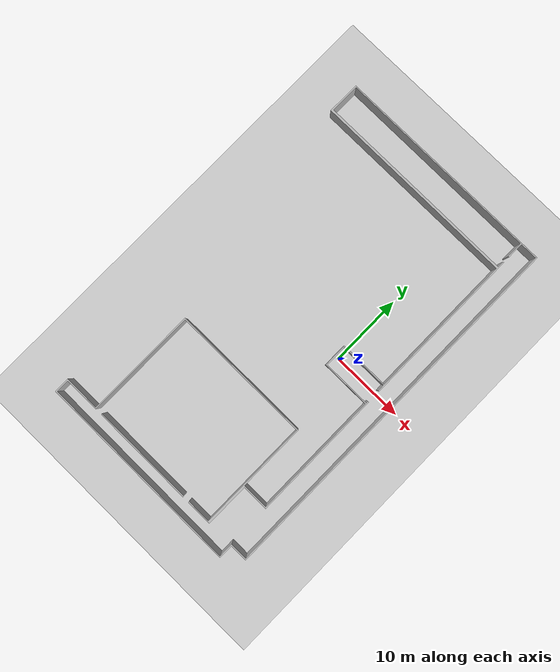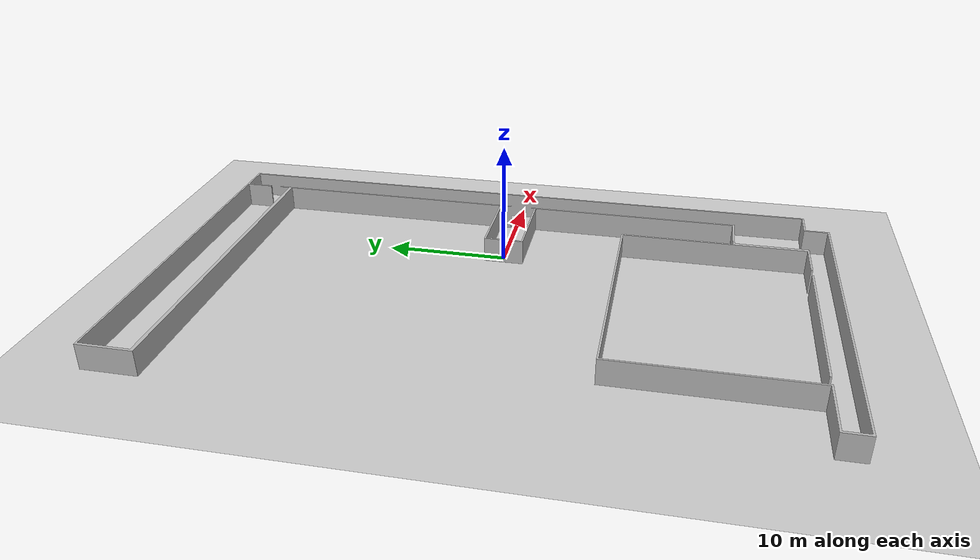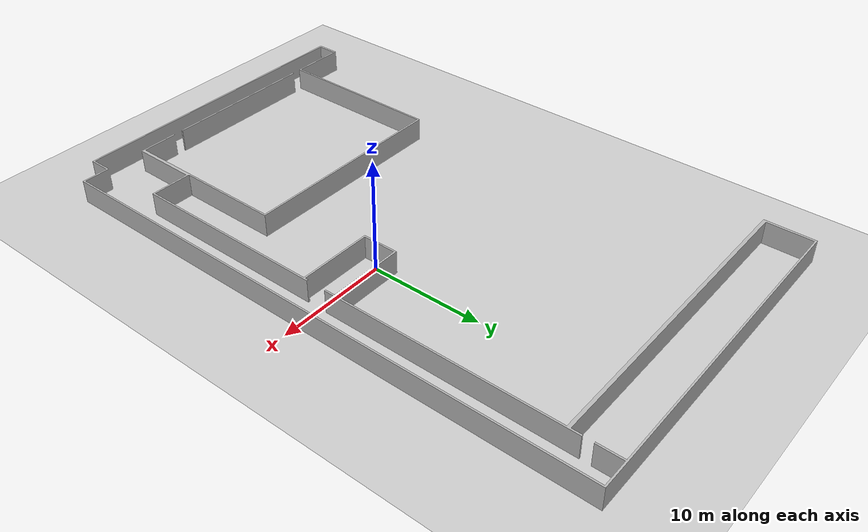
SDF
<sdf version='1.10'>
  <world name='empty'>
    <physics name='1ms' type='ignored'>
      <max_step_size>0.001</max_step_size>
      <real_time_factor>1</real_time_factor>
      <real_time_update_rate>1000</real_time_update_rate>
    </physics>
    <plugin name='gz::sim::systems::Physics' filename='gz-sim-physics-system'/>
    <plugin name='gz::sim::systems::UserCommands' filename='gz-sim-user-commands-system'/>
    <plugin name='gz::sim::systems::SceneBroadcaster' filename='gz-sim-scene-broadcaster-system'/>
    <plugin name='gz::sim::systems::Sensors' filename='gz-sim-sensors-system'>
      <render_engine>ogre2</render_engine>
    </plugin>
    <plugin name='gz::sim::systems::Contact' filename='gz-sim-contact-system'/>
    <plugin name='gz::sim::systems::Clock' filename='gz-sim-clock-system'/>
    <plugin
      filename="gz-sim-imu-system"
      name="gz::sim::systems::Imu">
    </plugin>
    <gravity>0 0 -9.8000000000000007</gravity>
    <magnetic_field>5.5644999999999998e-06 2.2875799999999999e-05 -4.2388400000000002e-05</magnetic_field>
    <atmosphere type='adiabatic'/>
    <scene>
      <ambient>0.400000006 0.400000006 0.400000006 1</ambient>
      <background>0.699999988 0.699999988 0.699999988 1</background>
      <shadows>true</shadows>
    </scene>
    <model name='ground_plane'>
      <static>true</static>
      <link name='link'>
        <collision name='collision'>
          <geometry>
            <plane>
              <normal>0 0 1</normal>
              <size>100 100</size>
            </plane>
          </geometry>
          <surface>
            <friction>
              <ode/>
            </friction>
            <bounce/>
            <contact/>
          </surface>
        </collision>
        <visual name='visual'>
          <geometry>
            <plane>
              <normal>0 0 1</normal>
              <size>100 100</size>
            </plane>
          </geometry>
          <material>
            <ambient>0.800000012 0.800000012 0.800000012 1</ambient>
            <diffuse>0.800000012 0.800000012 0.800000012 1</diffuse>
            <specular>0.800000012 0.800000012 0.800000012 1</specular>
          </material>
        </visual>
        <pose>0 0 0 0 0 0</pose>
        <inertial>
          <pose>0 0 0 0 0 0</pose>
          <mass>1</mass>
          <inertia>
            <ixx>1</ixx>
            <ixy>0</ixy>
            <ixz>0</ixz>
            <iyy>1</iyy>
            <iyz>0</iyz>
            <izz>1</izz>
          </inertia>
        </inertial>
        <enable_wind>false</enable_wind>
      </link>
      <pose>0 0 0 0 0 0</pose>
      <self_collide>false</self_collide>
    </model>
    <model name='simulation_blockE'>
      <static>true</static>
      <link name='link'>
        <visual name='visual'>
          <geometry>
            <mesh>
              <uri>file:///dev_ws_jazzy/src/articubot_one/my_model/meshes/simulation_blockE.STL</uri>
            </mesh>
          </geometry>
          <pose>0 0 0 0 0 0</pose>
        </visual>
        <collision name='collision'>
          <geometry>
            <box>
              <size>1 1 1</size>
            </box>
          </geometry>
          <surface>
            <friction>
              <ode/>
            </friction>
            <bounce/>
            <contact/>
          </surface>
        </collision>
        <pose>0 0 0 0 0 0</pose>
        <inertial>
          <pose>0 0 0 0 0 0</pose>
          <mass>40</mass>
          <inertia>
            <ixx>1</ixx>
            <ixy>0</ixy>
            <ixz>0</ixz>
            <iyy>1</iyy>
            <iyz>0</iyz>
            <izz>1</izz>
          </inertia>
        </inertial>
        <enable_wind>false</enable_wind>
      </link>
      <pose>8.8264808654785156 26.004684448242188 0 0 0 3.1399999999975172</pose>
      <static>false</static>
      <self_collide>false</self_collide>
    </model>
    <light name='sun' type='directional'>
      <pose>0 0 10 0 0 0</pose>
      <cast_shadows>true</cast_shadows>
      <intensity>1</intensity>
      <direction>-0.5 0.10000000000000001 -0.90000000000000002</direction>
      <diffuse>0.800000012 0.800000012 0.800000012 1</diffuse>
      <specular>0.200000003 0.200000003 0.200000003 1</specular>
      <attenuation>
        <range>1000</range>
        <linear>0.01</linear>
        <constant>0.90000000000000002</constant>
        <quadratic>0.001</quadratic>
      </attenuation>
      <spot>
        <inner_angle>0</inner_angle>
        <outer_angle>0</outer_angle>
        <falloff>0</falloff>
      </spot>
    </light>
  </world>
</sdf>
